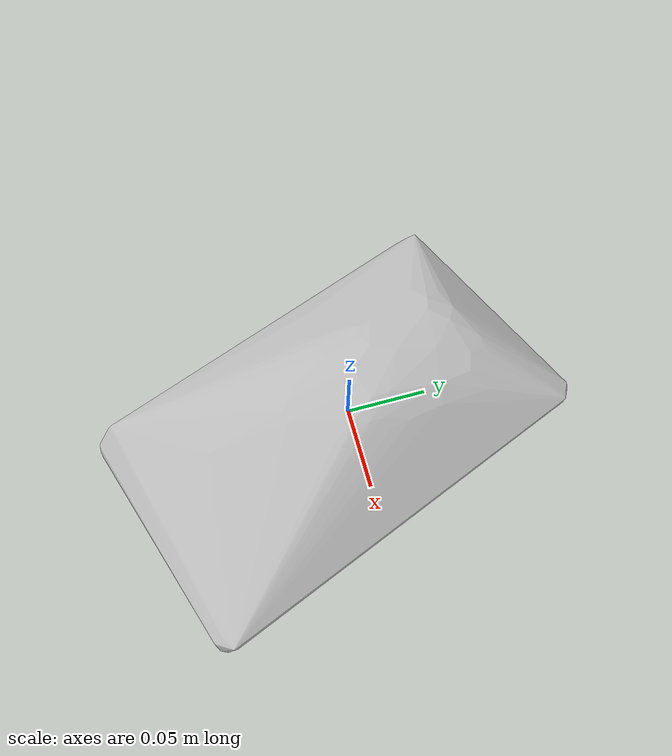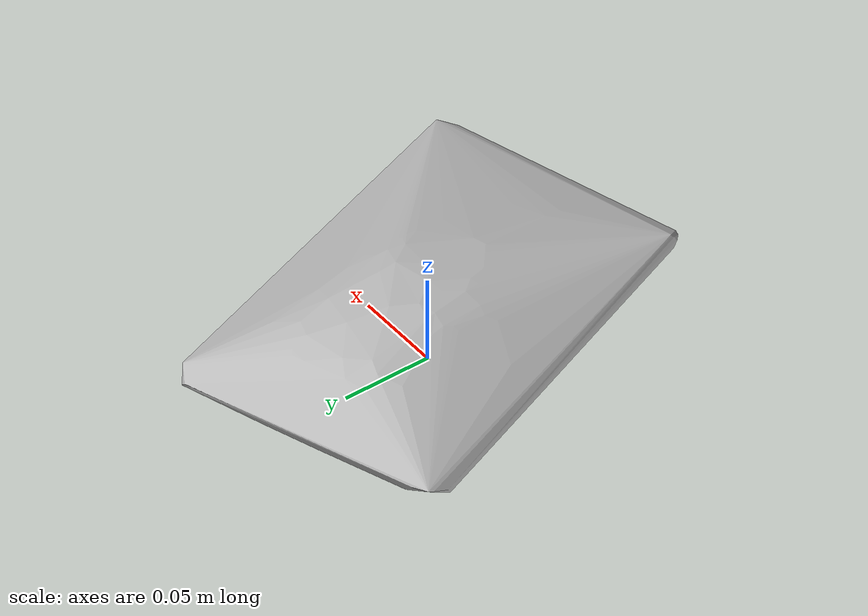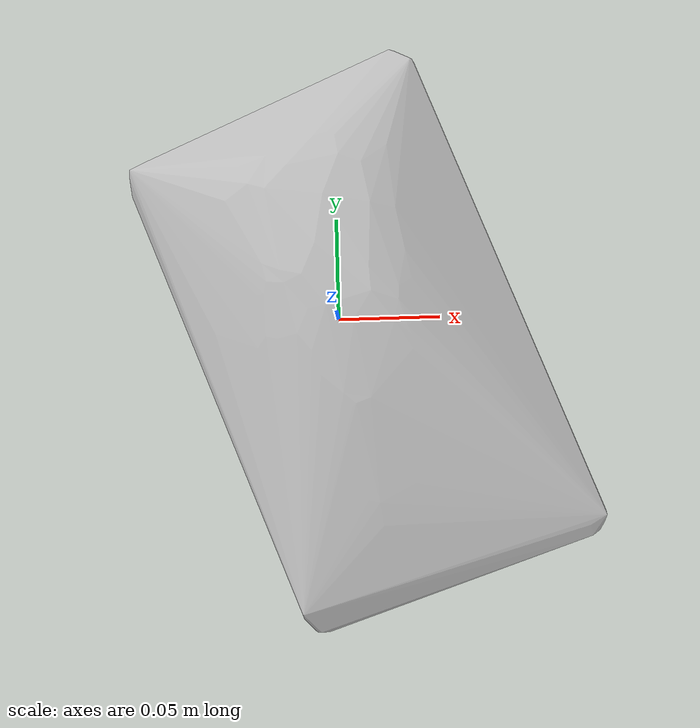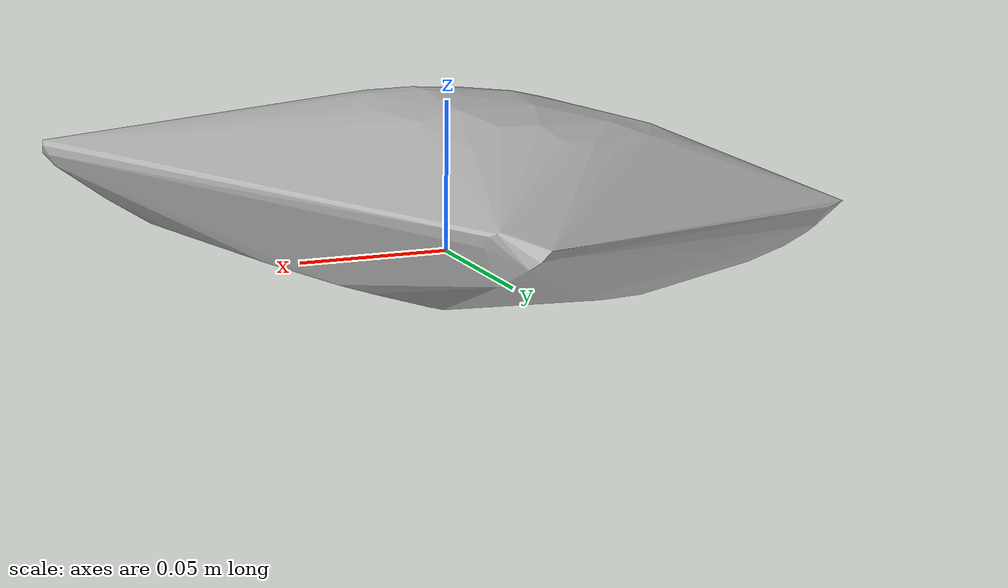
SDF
<?xml version='1.0'?>
<sdf version="1.4">
  <model name="mahatma_rice">
    <static>false</static>
    <link name="link">
      <inertial>
        <pose>0.010106772040441612 -0.008246873825287913 0.0246824137205845 0.9909117172201384 -1.5227942344089647 -2.1991336756294255</pose>
        <mass>0.11253534162982766</mass>
        <inertia>
          <ixx>0.0006019043971015445</ixx>
          <ixy>8.221837342593766e-21</ixy>
          <ixz>-1.1904007823945108e-20</ixz>
          <iyy>0.00045460820634725656</iyy>
          <iyz>3.3045989955745043e-22</iyz>
          <izz>0.00017501517750719668</izz>
        </inertia>
      </inertial>
      <collision name="collision">
        <geometry>
          <mesh>
            <!-- Use a downsampled mesh for collisions -->
            <uri>model:///mahatma_rice/mahatma_rice_250_collision.obj</uri>
	        </mesh>
        </geometry>
        <surface>
      </surface>
      </collision>
      <visual name="visual">
        <geometry>
          <mesh>
            <uri>model:///mahatma_rice/optimized_tsdf_texture_mapped_mesh.obj</uri>
	        </mesh>
        </geometry>
        <material>
          <script>
            <uri>model:///mahatma_rice/mahatma_rice.material</uri>
            <name>mahatma_rice</name>
          </script>
        </material>
      </visual>
    </link>
  </model>
</sdf>
